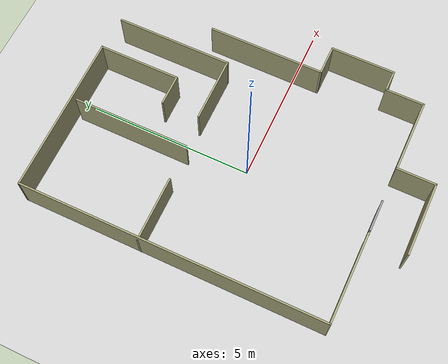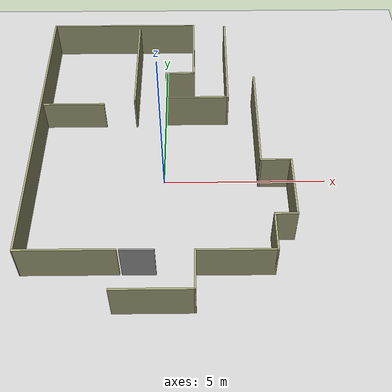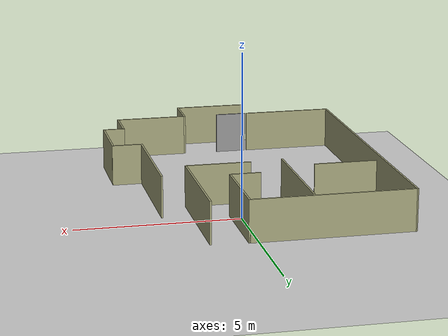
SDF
<?xml version="1.0" ?>
<sdf version="1.6">
  <world name="default">
    <atmosphere type="adiabatic"/>
    <wind>
      <linear_velocity>0 0 0</linear_velocity>
    </wind>
    <physics name="default_physics" default="1" type="ode">
      <max_step_size>0.001</max_step_size>
      <real_time_factor>1.0</real_time_factor>
      <real_time_update_rate>1000.0</real_time_update_rate>
      <max_contacts>20</max_contacts>
      <ode>
        <solver>
          <min_step_size>0.0001</min_step_size>
          <iters>50</iters>
          <sor>1.3</sor>
          <type>quick</type>
          <precon_iters>0</precon_iters>
          <use_dynamic_moi_rescaling>0</use_dynamic_moi_rescaling>
          <friction_model>pyramid_model</friction_model>
        </solver>
        <constraints>
          <cfm>0.0</cfm>
          <erp>0.2</erp>
          <contact_surface_layer>0.001</contact_surface_layer>
          <contact_max_correcting_vel>100.0</contact_max_correcting_vel>
        </constraints>
      </ode>
    </physics>
    <gravity>0 0 -9.8</gravity>
    <include>
      <uri>model://walls</uri>
      <pose frame="">0 0 1 0 -0 0</pose>
      <name>walls</name>
      <static>1</static>
    </include>
    <include>
      <uri>model://ground_plane</uri>
      <pose frame="">0 0 0 0 -0 0</pose>
      <name>ground_plane</name>
      <static>1</static>
    </include>
    <include>
      <uri>model://ground_plane</uri>
    </include>
    <include>
      <uri>model://sun</uri>
    </include>
  </world>
</sdf>

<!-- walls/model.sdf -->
<sdf version='1.6'>
  <model name='walls'>
    <pose frame=''>0.070483 0.106017 0 0 -0 0</pose>
    <link name='Door_4'>
      <collision name='Door_4_Collision'>
        <geometry>
          <box>
            <size>0.906 0.05 1.2</size>
          </box>
        </geometry>
        <pose frame=''>0 0 0.6 0 -0 0</pose>
      </collision>
      <visual name='Door_4_Visual'>
        <pose frame=''>0 0 0.6 0 -0 0</pose>
        <geometry>
          <box>
            <size>0.906 0.05 1.2</size>
          </box>
        </geometry>
        <material>
          <script>
            <uri>file://media/materials/scripts/gazebo.material</uri>
            <name>Gazebo/Grey</name>
          </script>
        </material>
      </visual>
      <pose frame=''>-0.514741 -3.87011 0 0 0 -0.000969</pose>
    </link>
    <link name='Wall_19'>
      <collision name='Wall_19_Collision'>
        <geometry>
          <box>
            <size>1.9 0.05 1</size>
          </box>
        </geometry>
        <pose frame=''>0 0 0.5 0 -0 0</pose>
      </collision>
      <visual name='Wall_19_Visual'>
        <pose frame=''>0 0 0.5 0 -0 0</pose>
        <geometry>
          <box>
            <size>1.9 0.05 1</size>
          </box>
        </geometry>
        <material>
          <script>
            <uri>file://media/materials/scripts/gazebo.material</uri>
            <name>Gazebo/Grey</name>
          </script>
          <ambient>0.666667 0.666667 0.498039 1</ambient>
        </material>
      </visual>
      <pose frame=''>-2.73248 1.48798 0 0 -0 0</pose>
    </link>
    <link name='Wall_21'>
      <collision name='Wall_21_Collision'>
        <geometry>
          <box>
            <size>2.15 0.05 1.2</size>
          </box>
        </geometry>
        <pose frame=''>0 0 0.6 0 -0 0</pose>
      </collision>
      <visual name='Wall_21_Visual'>
        <pose frame=''>0 0 0.6 0 -0 0</pose>
        <geometry>
          <box>
            <size>2.15 0.05 1.2</size>
          </box>
        </geometry>
        <material>
          <script>
            <uri>file://media/materials/scripts/gazebo.material</uri>
            <name>Gazebo/Grey</name>
          </script>
          <ambient>0.666667 0.666667 0.498039 1</ambient>
        </material>
      </visual>
      <pose frame=''>-0.092483 -4.98802 0 0 -0 0</pose>
    </link>
    <link name='Wall_22'>
      <collision name='Wall_22_Collision'>
        <geometry>
          <box>
            <size>1.15 0.05 1.2</size>
          </box>
        </geometry>
        <pose frame=''>0 0 0.6 0 -0 0</pose>
      </collision>
      <visual name='Wall_22_Visual'>
        <pose frame=''>0 0 0.6 0 -0 0</pose>
        <geometry>
          <box>
            <size>1.15 0.05 1.2</size>
          </box>
        </geometry>
        <material>
          <script>
            <uri>file://media/materials/scripts/gazebo.material</uri>
            <name>Gazebo/Grey</name>
          </script>
          <ambient>0.666667 0.666667 0.498039 1</ambient>
        </material>
      </visual>
      <pose frame=''>0.957517 -4.43802 0 0 -0 1.5708</pose>
    </link>
    <link name='Wall_23'>
      <collision name='Wall_23_Collision'>
        <geometry>
          <box>
            <size>2.15 0.05 1.2</size>
          </box>
        </geometry>
        <pose frame=''>0 0 0.6 0 -0 0</pose>
      </collision>
      <visual name='Wall_23_Visual'>
        <pose frame=''>0 0 0.6 0 -0 0</pose>
        <geometry>
          <box>
            <size>2.15 0.05 1.2</size>
          </box>
        </geometry>
        <material>
          <script>
            <uri>file://media/materials/scripts/gazebo.material</uri>
            <name>Gazebo/Grey</name>
          </script>
          <ambient>0.666667 0.666667 0.498039 1</ambient>
        </material>
      </visual>
      <pose frame=''>2.00752 -3.88802 0 0 -0 0</pose>
    </link>
    <link name='Wall_24'>
      <collision name='Wall_24_Collision'>
        <geometry>
          <box>
            <size>1.15 0.05 1.2</size>
          </box>
        </geometry>
        <pose frame=''>0 0 0.6 0 -0 0</pose>
      </collision>
      <visual name='Wall_24_Visual'>
        <pose frame=''>0 0 0.6 0 -0 0</pose>
        <geometry>
          <box>
            <size>1.15 0.05 1.2</size>
          </box>
        </geometry>
        <material>
          <script>
            <uri>file://media/materials/scripts/gazebo.material</uri>
            <name>Gazebo/Grey</name>
          </script>
          <ambient>0.666667 0.666667 0.498039 1</ambient>
        </material>
      </visual>
      <pose frame=''>3.05752 -3.33802 0 0 -0 1.5708</pose>
    </link>
    <link name='Wall_25'>
      <collision name='Wall_25_Collision'>
        <geometry>
          <box>
            <size>0.65 0.05 1.2</size>
          </box>
        </geometry>
        <pose frame=''>0 0 0.6 0 -0 0</pose>
      </collision>
      <visual name='Wall_25_Visual'>
        <pose frame=''>0 0 0.6 0 -0 0</pose>
        <geometry>
          <box>
            <size>0.65 0.05 1.2</size>
          </box>
        </geometry>
        <material>
          <script>
            <uri>file://media/materials/scripts/gazebo.material</uri>
            <name>Gazebo/Grey</name>
          </script>
          <ambient>0.666667 0.666667 0.498039 1</ambient>
        </material>
      </visual>
      <pose frame=''>3.35752 -2.78802 0 0 -0 0</pose>
    </link>
    <link name='Wall_26'>
      <collision name='Wall_26_Collision'>
        <geometry>
          <box>
            <size>1.9 0.05 1.2</size>
          </box>
        </geometry>
        <pose frame=''>0 0 0.6 0 -0 0</pose>
      </collision>
      <visual name='Wall_26_Visual'>
        <pose frame=''>0 0 0.6 0 -0 0</pose>
        <geometry>
          <box>
            <size>1.9 0.05 1.2</size>
          </box>
        </geometry>
        <material>
          <script>
            <uri>file://media/materials/scripts/gazebo.material</uri>
            <name>Gazebo/Grey</name>
          </script>
          <ambient>0.666667 0.666667 0.498039 1</ambient>
        </material>
      </visual>
      <pose frame=''>3.65752 -1.86302 0 0 -0 1.5708</pose>
    </link>
    <link name='Wall_27'>
      <collision name='Wall_27_Collision'>
        <geometry>
          <box>
            <size>0.9 0.05 1.2</size>
          </box>
        </geometry>
        <pose frame=''>0 0 0.6 0 -0 0</pose>
      </collision>
      <visual name='Wall_27_Visual'>
        <pose frame=''>0 0 0.6 0 -0 0</pose>
        <geometry>
          <box>
            <size>0.9 0.05 1.2</size>
          </box>
        </geometry>
        <material>
          <script>
            <uri>file://media/materials/scripts/gazebo.material</uri>
            <name>Gazebo/Grey</name>
          </script>
          <ambient>0.666667 0.666667 0.498039 1</ambient>
        </material>
      </visual>
      <pose frame=''>3.23252 -0.938017 0 0 -0 3.14159</pose>
    </link>
    <link name='Wall_36'>
      <collision name='Wall_36_Collision'>
        <geometry>
          <box>
            <size>1.9 0.05 1.2</size>
          </box>
        </geometry>
        <pose frame=''>0 0 0.6 0 -0 0</pose>
      </collision>
      <visual name='Wall_36_Visual'>
        <pose frame=''>0 0 0.6 0 -0 0</pose>
        <geometry>
          <box>
            <size>1.9 0.05 1.2</size>
          </box>
        </geometry>
        <material>
          <script>
            <uri>file://media/materials/scripts/gazebo.material</uri>
            <name>Gazebo/Grey</name>
          </script>
          <ambient>0.666667 0.666667 0.498039 1</ambient>
        </material>
      </visual>
      <pose frame=''>1.04652 1.55798 0 0 -0 0</pose>
    </link>
    <link name='Wall_48'>
      <collision name='Wall_48_Collision'>
        <geometry>
          <box>
            <size>8.90001 0.05 1.2</size>
          </box>
        </geometry>
        <pose frame=''>0 0 0.6 0 -0 0</pose>
      </collision>
      <visual name='Wall_48_Visual'>
        <pose frame=''>0 0 0.6 0 -0 0</pose>
        <geometry>
          <box>
            <size>8.90001 0.05 1.2</size>
          </box>
        </geometry>
        <material>
          <script>
            <uri>file://media/materials/scripts/gazebo.material</uri>
            <name>Gazebo/Grey</name>
          </script>
          <ambient>0.666667 0.666667 0.498039 1</ambient>
        </material>
      </visual>
      <pose frame=''>-3.65148 0.562983 0 0 -0 1.57215</pose>
    </link>
    <link name='Wall_49'>
      <collision name='Wall_49_Collision'>
        <geometry>
          <box>
            <size>4.65 0.05 1.2</size>
          </box>
        </geometry>
        <pose frame=''>0 0 0.6 0 -0 0</pose>
      </collision>
      <visual name='Wall_49_Visual'>
        <pose frame=''>0 0 0.6 0 -0 0</pose>
        <geometry>
          <box>
            <size>4.65 0.05 1.2</size>
          </box>
        </geometry>
        <material>
          <script>
            <uri>file://media/materials/scripts/gazebo.material</uri>
            <name>Gazebo/Grey</name>
          </script>
          <ambient>0.666667 0.666667 0.498039 1</ambient>
        </material>
      </visual>
      <pose frame=''>-1.35748 4.98798 0 0 -0 0</pose>
    </link>
    <link name='Wall_50'>
      <collision name='Wall_50_Collision'>
        <geometry>
          <box>
            <size>2.4 0.05 1.2</size>
          </box>
        </geometry>
        <pose frame=''>0 0 0.6 0 -0 0</pose>
      </collision>
      <visual name='Wall_50_Visual'>
        <pose frame=''>0 0 0.6 0 -0 0</pose>
        <geometry>
          <box>
            <size>2.4 0.05 1.2</size>
          </box>
        </geometry>
        <material>
          <script>
            <uri>file://media/materials/scripts/gazebo.material</uri>
            <name>Gazebo/Grey</name>
          </script>
          <ambient>0.666667 0.666667 0.498039 1</ambient>
        </material>
      </visual>
      <pose frame=''>0.942517 3.81298 0 0 0 -1.5708</pose>
    </link>
    <link name='Wall_51'>
      <collision name='Wall_51_Collision'>
        <geometry>
          <box>
            <size>0.9 0.05 1.2</size>
          </box>
        </geometry>
        <pose frame=''>0 0 0.6 0 -0 0</pose>
      </collision>
      <visual name='Wall_51_Visual'>
        <pose frame=''>0 0 0.6 0 -0 0</pose>
        <geometry>
          <box>
            <size>0.9 0.05 1.2</size>
          </box>
        </geometry>
        <material>
          <script>
            <uri>file://media/materials/scripts/gazebo.material</uri>
            <name>Gazebo/Grey</name>
          </script>
          <ambient>0.666667 0.666667 0.498039 1</ambient>
        </material>
      </visual>
      <pose frame=''>0.517517 2.63798 0 0 -0 3.14159</pose>
    </link>
    <link name='Wall_53'>
      <collision name='Wall_53_Collision'>
        <geometry>
          <box>
            <size>3.4 0.05 1.2</size>
          </box>
        </geometry>
        <pose frame=''>0 0 0.6 0 -0 0</pose>
      </collision>
      <visual name='Wall_53_Visual'>
        <pose frame=''>0 0 0.6 0 -0 0</pose>
        <geometry>
          <box>
            <size>3.4 0.05 1.2</size>
          </box>
        </geometry>
        <material>
          <script>
            <uri>file://media/materials/scripts/gazebo.material</uri>
            <name>Gazebo/Grey</name>
          </script>
          <ambient>0.666667 0.666667 0.498039 1</ambient>
        </material>
      </visual>
      <pose frame=''>-0.835483 3.14198 0 0 -0 1.5708</pose>
    </link>
    <link name='Wall_58'>
      <collision name='Wall_58_Collision'>
        <geometry>
          <box>
            <size>3.4 0.05 1.2</size>
          </box>
        </geometry>
        <pose frame=''>0 0 0.6 0 -0 0</pose>
      </collision>
      <visual name='Wall_58_Visual'>
        <pose frame=''>0 0 0.6 0 -0 0</pose>
        <geometry>
          <box>
            <size>3.4 0.05 1.2</size>
          </box>
        </geometry>
        <material>
          <script>
            <uri>file://media/materials/scripts/gazebo.material</uri>
            <name>Gazebo/Grey</name>
          </script>
          <ambient>0.666667 0.666667 0.498039 1</ambient>
        </material>
      </visual>
      <pose frame=''>1.97152 3.23298 0 0 -0 1.5708</pose>
    </link>
    <link name='Wall_61'>
      <collision name='Wall_61_Collision'>
        <geometry>
          <box>
            <size>2.65 0.05 1.2</size>
          </box>
        </geometry>
        <pose frame=''>0 0 0.6 0 -0 0</pose>
      </collision>
      <visual name='Wall_61_Visual'>
        <pose frame=''>0 0 0.6 0 -0 0</pose>
        <geometry>
          <box>
            <size>2.65 0.05 1.2</size>
          </box>
        </geometry>
        <material>
          <script>
            <uri>file://media/materials/scripts/gazebo.material</uri>
            <name>Gazebo/Grey</name>
          </script>
          <ambient>0.666667 0.666667 0.498039 1</ambient>
        </material>
      </visual>
      <pose frame=''>-2.34548 -3.86202 0 0 -0 0</pose>
    </link>
    <link name='Wall_63'>
      <collision name='Wall_63_Collision'>
        <geometry>
          <box>
            <size>3.4 0.05 1.2</size>
          </box>
        </geometry>
        <pose frame=''>0 0 0.6 0 -0 0</pose>
      </collision>
      <visual name='Wall_63_Visual'>
        <pose frame=''>0 0 0.6 0 -0 0</pose>
        <geometry>
          <box>
            <size>3.4 0.05 1.2</size>
          </box>
        </geometry>
        <material>
          <script>
            <uri>file://media/materials/scripts/gazebo.material</uri>
            <name>Gazebo/Grey</name>
          </script>
          <ambient>0.666667 0.666667 0.498039 1</ambient>
        </material>
      </visual>
      <pose frame=''>2.80752 0.736983 0 0 -0 1.5708</pose>
    </link>
    <static>1</static>
  </model>
</sdf>
